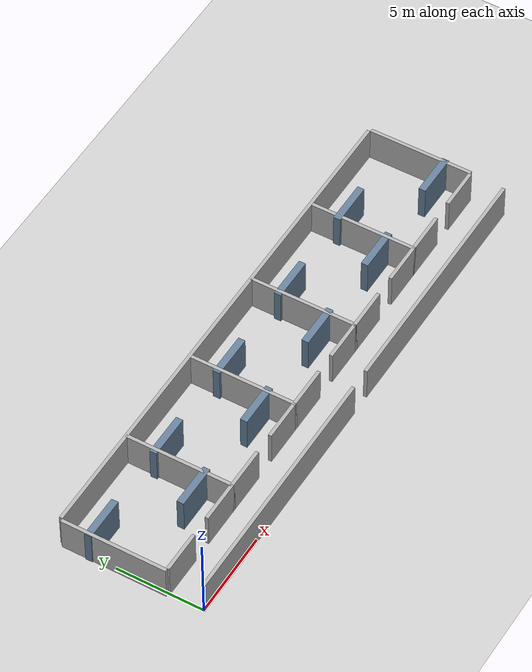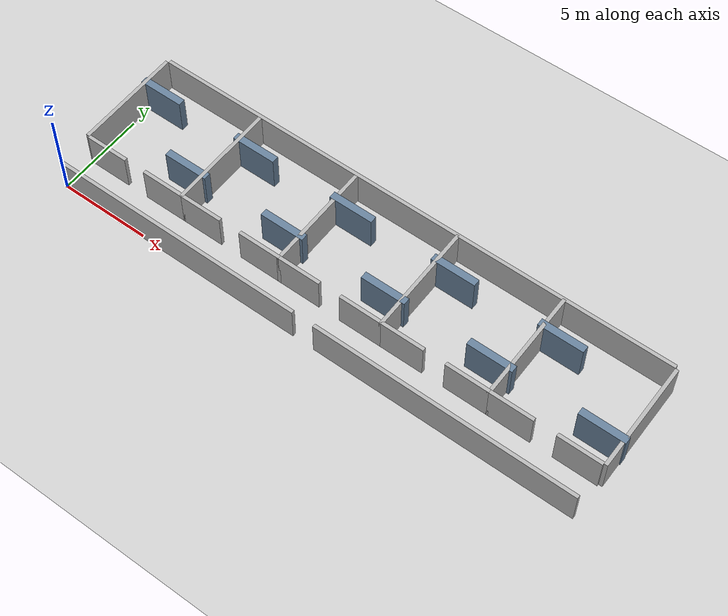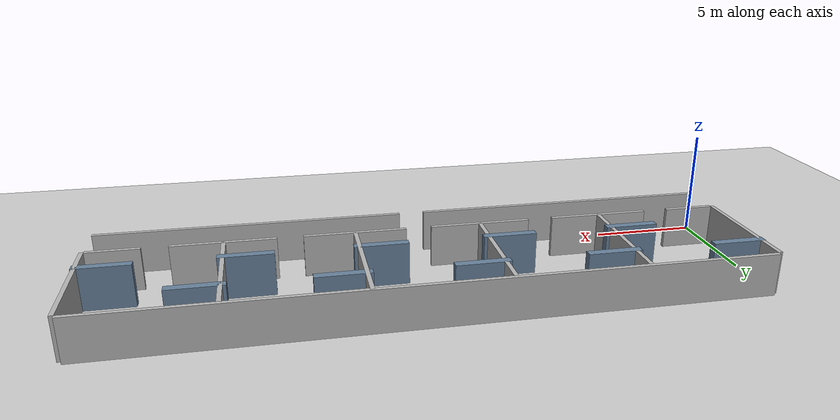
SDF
<?xml version="1.0" ?>
<!-- 办公室：5 间房 + 走廊 + 门洞 + 货架（由 scripts/gen_office_world.py 生成） -->
<sdf version="1.6">
  <world name="office">
    <include><uri>model://sun</uri></include>
    <include><uri>model://ground_plane</uri></include>
    <physics type="ode">
      <max_step_size>0.001</max_step_size>
      <real_time_factor>1</real_time_factor>
      <real_time_update_rate>1000</real_time_update_rate>
    </physics>
    <model name="wall_south_w">
      <static>true</static>
      <link name="link">
        <collision name="collision">
          <geometry><box><size>14.4 0.2 2.0</size></box></geometry>
        </collision>
        <visual name="visual">
          <geometry><box><size>14.4 0.2 2.0</size></box></geometry>
          <material><ambient>0.7 0.7 0.7 1</ambient></material>
        </visual>
      </link>
      <pose>7.2 0 1.0 0 0 0.0</pose>
    </model>

    <model name="wall_south_e">
      <static>true</static>
      <link name="link">
        <collision name="collision">
          <geometry><box><size>14.4 0.2 2.0</size></box></geometry>
        </collision>
        <visual name="visual">
          <geometry><box><size>14.4 0.2 2.0</size></box></geometry>
          <material><ambient>0.7 0.7 0.7 1</ambient></material>
        </visual>
      </link>
      <pose>22.8 0 1.0 0 0 0.0</pose>
    </model>

    <model name="wall_north">
      <static>true</static>
      <link name="link">
        <collision name="collision">
          <geometry><box><size>30 0.2 2.0</size></box></geometry>
        </collision>
        <visual name="visual">
          <geometry><box><size>30 0.2 2.0</size></box></geometry>
          <material><ambient>0.7 0.7 0.7 1</ambient></material>
        </visual>
      </link>
      <pose>15 8.1 1.0 0 0 0.0</pose>
    </model>

    <model name="wall_x0">
      <static>true</static>
      <link name="link">
        <collision name="collision">
          <geometry><box><size>0.2 6.0 2.0</size></box></geometry>
        </collision>
        <visual name="visual">
          <geometry><box><size>0.2 6.0 2.0</size></box></geometry>
          <material><ambient>0.7 0.7 0.7 1</ambient></material>
        </visual>
      </link>
      <pose>-0.1 5 1.0 0 0 0.0</pose>
    </model>

    <model name="wall_x1">
      <static>true</static>
      <link name="link">
        <collision name="collision">
          <geometry><box><size>0.2 6.2 2.0</size></box></geometry>
        </collision>
        <visual name="visual">
          <geometry><box><size>0.2 6.2 2.0</size></box></geometry>
          <material><ambient>0.7 0.7 0.7 1</ambient></material>
        </visual>
      </link>
      <pose>6.0 5 1.0 0 0 0.0</pose>
    </model>

    <model name="wall_x2">
      <static>true</static>
      <link name="link">
        <collision name="collision">
          <geometry><box><size>0.2 6.2 2.0</size></box></geometry>
        </collision>
        <visual name="visual">
          <geometry><box><size>0.2 6.2 2.0</size></box></geometry>
          <material><ambient>0.7 0.7 0.7 1</ambient></material>
        </visual>
      </link>
      <pose>12.0 5 1.0 0 0 0.0</pose>
    </model>

    <model name="wall_x3">
      <static>true</static>
      <link name="link">
        <collision name="collision">
          <geometry><box><size>0.2 6.2 2.0</size></box></geometry>
        </collision>
        <visual name="visual">
          <geometry><box><size>0.2 6.2 2.0</size></box></geometry>
          <material><ambient>0.7 0.7 0.7 1</ambient></material>
        </visual>
      </link>
      <pose>18.0 5 1.0 0 0 0.0</pose>
    </model>

    <model name="wall_x4">
      <static>true</static>
      <link name="link">
        <collision name="collision">
          <geometry><box><size>0.2 6.2 2.0</size></box></geometry>
        </collision>
        <visual name="visual">
          <geometry><box><size>0.2 6.2 2.0</size></box></geometry>
          <material><ambient>0.7 0.7 0.7 1</ambient></material>
        </visual>
      </link>
      <pose>24.0 5 1.0 0 0 0.0</pose>
    </model>

    <model name="wall_x5">
      <static>true</static>
      <link name="link">
        <collision name="collision">
          <geometry><box><size>0.2 6.0 2.0</size></box></geometry>
        </collision>
        <visual name="visual">
          <geometry><box><size>0.2 6.0 2.0</size></box></geometry>
          <material><ambient>0.7 0.7 0.7 1</ambient></material>
        </visual>
      </link>
      <pose>30.1 5 1.0 0 0 0.0</pose>
    </model>

    <model name="wall_corr_w0">
      <static>true</static>
      <link name="link">
        <collision name="collision">
          <geometry><box><size>2.4 0.2 2.0</size></box></geometry>
        </collision>
        <visual name="visual">
          <geometry><box><size>2.4 0.2 2.0</size></box></geometry>
          <material><ambient>0.7 0.7 0.7 1</ambient></material>
        </visual>
      </link>
      <pose>1.2 2.0 1.0 0 0 0.0</pose>
    </model>

    <model name="wall_corr_e0">
      <static>true</static>
      <link name="link">
        <collision name="collision">
          <geometry><box><size>2.4 0.2 2.0</size></box></geometry>
        </collision>
        <visual name="visual">
          <geometry><box><size>2.4 0.2 2.0</size></box></geometry>
          <material><ambient>0.7 0.7 0.7 1</ambient></material>
        </visual>
      </link>
      <pose>4.8 2.0 1.0 0 0 0.0</pose>
    </model>

    <model name="wall_corr_w1">
      <static>true</static>
      <link name="link">
        <collision name="collision">
          <geometry><box><size>2.4000000000000004 0.2 2.0</size></box></geometry>
        </collision>
        <visual name="visual">
          <geometry><box><size>2.4000000000000004 0.2 2.0</size></box></geometry>
          <material><ambient>0.7 0.7 0.7 1</ambient></material>
        </visual>
      </link>
      <pose>7.2 2.0 1.0 0 0 0.0</pose>
    </model>

    <model name="wall_corr_e1">
      <static>true</static>
      <link name="link">
        <collision name="collision">
          <geometry><box><size>2.4 0.2 2.0</size></box></geometry>
        </collision>
        <visual name="visual">
          <geometry><box><size>2.4 0.2 2.0</size></box></geometry>
          <material><ambient>0.7 0.7 0.7 1</ambient></material>
        </visual>
      </link>
      <pose>10.799999999999999 2.0 1.0 0 0 0.0</pose>
    </model>

    <model name="wall_corr_w2">
      <static>true</static>
      <link name="link">
        <collision name="collision">
          <geometry><box><size>2.4000000000000004 0.2 2.0</size></box></geometry>
        </collision>
        <visual name="visual">
          <geometry><box><size>2.4000000000000004 0.2 2.0</size></box></geometry>
          <material><ambient>0.7 0.7 0.7 1</ambient></material>
        </visual>
      </link>
      <pose>13.2 2.0 1.0 0 0 0.0</pose>
    </model>

    <model name="wall_corr_e2">
      <static>true</static>
      <link name="link">
        <collision name="collision">
          <geometry><box><size>2.4 0.2 2.0</size></box></geometry>
        </collision>
        <visual name="visual">
          <geometry><box><size>2.4 0.2 2.0</size></box></geometry>
          <material><ambient>0.7 0.7 0.7 1</ambient></material>
        </visual>
      </link>
      <pose>16.8 2.0 1.0 0 0 0.0</pose>
    </model>

    <model name="wall_corr_w3">
      <static>true</static>
      <link name="link">
        <collision name="collision">
          <geometry><box><size>2.3999999999999986 0.2 2.0</size></box></geometry>
        </collision>
        <visual name="visual">
          <geometry><box><size>2.3999999999999986 0.2 2.0</size></box></geometry>
          <material><ambient>0.7 0.7 0.7 1</ambient></material>
        </visual>
      </link>
      <pose>19.2 2.0 1.0 0 0 0.0</pose>
    </model>

    <model name="wall_corr_e3">
      <static>true</static>
      <link name="link">
        <collision name="collision">
          <geometry><box><size>2.4 0.2 2.0</size></box></geometry>
        </collision>
        <visual name="visual">
          <geometry><box><size>2.4 0.2 2.0</size></box></geometry>
          <material><ambient>0.7 0.7 0.7 1</ambient></material>
        </visual>
      </link>
      <pose>22.8 2.0 1.0 0 0 0.0</pose>
    </model>

    <model name="wall_corr_w4">
      <static>true</static>
      <link name="link">
        <collision name="collision">
          <geometry><box><size>2.3999999999999986 0.2 2.0</size></box></geometry>
        </collision>
        <visual name="visual">
          <geometry><box><size>2.3999999999999986 0.2 2.0</size></box></geometry>
          <material><ambient>0.7 0.7 0.7 1</ambient></material>
        </visual>
      </link>
      <pose>25.2 2.0 1.0 0 0 0.0</pose>
    </model>

    <model name="wall_corr_e4">
      <static>true</static>
      <link name="link">
        <collision name="collision">
          <geometry><box><size>2.4 0.2 2.0</size></box></geometry>
        </collision>
        <visual name="visual">
          <geometry><box><size>2.4 0.2 2.0</size></box></geometry>
          <material><ambient>0.7 0.7 0.7 1</ambient></material>
        </visual>
      </link>
      <pose>28.8 2.0 1.0 0 0 0.0</pose>
    </model>

    <model name="shelf_0_a">
      <static>true</static>
      <link name="link">
        <collision name="collision">
          <geometry><box><size>2.5 0.4 2</size></box></geometry>
        </collision>
        <visual name="visual">
          <geometry><box><size>2.5 0.4 2</size></box></geometry>
          <material><ambient>0.4 0.5 0.6 1</ambient></material>
        </visual>
      </link>
      <pose>1.0 6.4 1 0 0 0</pose>
    </model>

    <model name="shelf_0_b">
      <static>true</static>
      <link name="link">
        <collision name="collision">
          <geometry><box><size>2.5 0.4 2</size></box></geometry>
        </collision>
        <visual name="visual">
          <geometry><box><size>2.5 0.4 2</size></box></geometry>
          <material><ambient>0.4 0.5 0.6 1</ambient></material>
        </visual>
      </link>
      <pose>5.0 3.6 1 0 0 0</pose>
    </model>

    <model name="shelf_1_a">
      <static>true</static>
      <link name="link">
        <collision name="collision">
          <geometry><box><size>2.5 0.4 2</size></box></geometry>
        </collision>
        <visual name="visual">
          <geometry><box><size>2.5 0.4 2</size></box></geometry>
          <material><ambient>0.4 0.5 0.6 1</ambient></material>
        </visual>
      </link>
      <pose>7.0 6.4 1 0 0 0</pose>
    </model>

    <model name="shelf_1_b">
      <static>true</static>
      <link name="link">
        <collision name="collision">
          <geometry><box><size>2.5 0.4 2</size></box></geometry>
        </collision>
        <visual name="visual">
          <geometry><box><size>2.5 0.4 2</size></box></geometry>
          <material><ambient>0.4 0.5 0.6 1</ambient></material>
        </visual>
      </link>
      <pose>11.0 3.6 1 0 0 0</pose>
    </model>

    <model name="shelf_2_a">
      <static>true</static>
      <link name="link">
        <collision name="collision">
          <geometry><box><size>2.5 0.4 2</size></box></geometry>
        </collision>
        <visual name="visual">
          <geometry><box><size>2.5 0.4 2</size></box></geometry>
          <material><ambient>0.4 0.5 0.6 1</ambient></material>
        </visual>
      </link>
      <pose>13.0 6.4 1 0 0 0</pose>
    </model>

    <model name="shelf_2_b">
      <static>true</static>
      <link name="link">
        <collision name="collision">
          <geometry><box><size>2.5 0.4 2</size></box></geometry>
        </collision>
        <visual name="visual">
          <geometry><box><size>2.5 0.4 2</size></box></geometry>
          <material><ambient>0.4 0.5 0.6 1</ambient></material>
        </visual>
      </link>
      <pose>17.0 3.6 1 0 0 0</pose>
    </model>

    <model name="shelf_3_a">
      <static>true</static>
      <link name="link">
        <collision name="collision">
          <geometry><box><size>2.5 0.4 2</size></box></geometry>
        </collision>
        <visual name="visual">
          <geometry><box><size>2.5 0.4 2</size></box></geometry>
          <material><ambient>0.4 0.5 0.6 1</ambient></material>
        </visual>
      </link>
      <pose>19.0 6.4 1 0 0 0</pose>
    </model>

    <model name="shelf_3_b">
      <static>true</static>
      <link name="link">
        <collision name="collision">
          <geometry><box><size>2.5 0.4 2</size></box></geometry>
        </collision>
        <visual name="visual">
          <geometry><box><size>2.5 0.4 2</size></box></geometry>
          <material><ambient>0.4 0.5 0.6 1</ambient></material>
        </visual>
      </link>
      <pose>23.0 3.6 1 0 0 0</pose>
    </model>

    <model name="shelf_4_a">
      <static>true</static>
      <link name="link">
        <collision name="collision">
          <geometry><box><size>2.5 0.4 2</size></box></geometry>
        </collision>
        <visual name="visual">
          <geometry><box><size>2.5 0.4 2</size></box></geometry>
          <material><ambient>0.4 0.5 0.6 1</ambient></material>
        </visual>
      </link>
      <pose>25.0 6.4 1 0 0 0</pose>
    </model>

    <model name="shelf_4_b">
      <static>true</static>
      <link name="link">
        <collision name="collision">
          <geometry><box><size>2.5 0.4 2</size></box></geometry>
        </collision>
        <visual name="visual">
          <geometry><box><size>2.5 0.4 2</size></box></geometry>
          <material><ambient>0.4 0.5 0.6 1</ambient></material>
        </visual>
      </link>
      <pose>29.0 3.6 1 0 0 0</pose>
    </model>

  </world>
</sdf>
